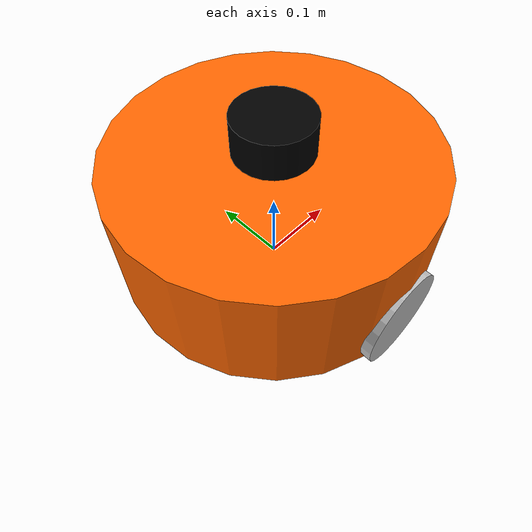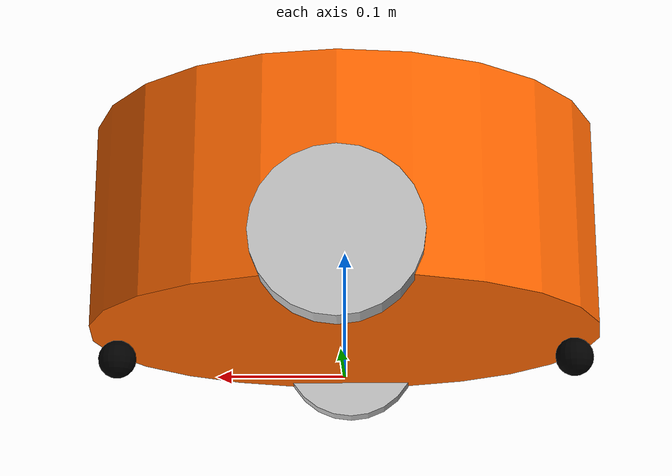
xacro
<?xml version="1.0"?>
<robot name="mbot" xmlns:xacro="http://www.ros.org/wiki/xacro">
    <xacro:include filename="$(find mbot_description)/urdf/xacro/gazebo/mbot_base_gazebo.xacro" />
    <xacro:include filename="$(find mbot_description)/urdf/xacro/sensors/lidar_gazebo.xacro" />
    <xacro:mbot_base_gazebo robot_name="robot2"/>
    <xacro:rplidar prefix="laser"/>

    <xacro:property name="lidar_offset_x" value="0" />
    <xacro:property name="lidar_offset_y" value="0" />
    <xacro:property name="lidar_offset_z" value="0.105" />

    <joint name="lidar_joint" type="fixed">
       <origin xyz="${lidar_offset_x} ${lidar_offset_y} ${lidar_offset_z}" rpy="0 0 0" />
       <parent link="base_link"/>
       <child link="laser_link"/>
   </joint>
</robot>

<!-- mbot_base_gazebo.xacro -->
<robot name="mbot" xmlns:xacro="http://www.ros.org/wiki/xacro">

    <xacro:property name="M_PI" value="3.1415926"/>
    <xacro:property name="base_mass"   value="20" />
    <xacro:property name="base_radius" value="0.20"/>
    <xacro:property name="base_length" value="0.16"/>

    <xacro:property name="wheel_mass"   value="2" />
    <xacro:property name="wheel_radius" value="0.06"/>
    <xacro:property name="wheel_length" value="0.025"/>
    <xacro:property name="wheel_joint_y" value="0.19"/>
    <xacro:property name="wheel_joint_z" value="0.05"/>

    <xacro:property name="caster_mass"    value="0.5" />
    <xacro:property name="caster_radius"  value="0.015"/> <!-- wheel_radius - ( base_length/2 - wheel_joint_z) -->
    <xacro:property name="caster_joint_x" value="0.18"/>

    <material name="yellow">
        <color rgba="1 0.4 0 1"/>
    </material>
    <material name="black">
        <color rgba="0 0 0 0.95"/>
    </material>
    <material name="gray">
        <color rgba="0.75 0.75 0.75 1"/>
    </material>

    <xacro:macro name="sphere_inertial_matrix" params="m r">
        <inertial>
            <mass value="${m}" />
            <inertia ixx="${2*m*r*r/5}" ixy="0" ixz="0"
                iyy="${2*m*r*r/5}" iyz="0"
                izz="${2*m*r*r/5}" />
        </inertial>
    </xacro:macro>

    <xacro:macro name="cylinder_inertial_matrix" params="m r h">
        <inertial>
            <mass value="${m}" />
            <inertia ixx="${m*(3*r*r+h*h)/12}" ixy = "0" ixz = "0"
                iyy="${m*(3*r*r+h*h)/12}" iyz = "0"
                izz="${m*r*r/2}" />
        </inertial>
    </xacro:macro>

    <xacro:macro name="wheel" params="prefix reflect">
        <joint name="${prefix}_wheel_joint" type="continuous">
            <origin xyz="0 ${reflect*wheel_joint_y} ${-wheel_joint_z}" rpy="0 0 0"/>
            <parent link="base_link"/>
            <child link="${prefix}_wheel_link"/>
            <axis xyz="0 1 0"/>
        </joint>

        <link name="${prefix}_wheel_link">
            <visual>
                <origin xyz="0 0 0" rpy="${M_PI/2} 0 0" />
                <geometry>
                    <cylinder radius="${wheel_radius}" length = "${wheel_length}"/>
                </geometry>
                <material name="gray" />
            </visual>
            <collision>
                <origin xyz="0 0 0" rpy="${M_PI/2} 0 0" />
                <geometry>
                    <cylinder radius="${wheel_radius}" length = "${wheel_length}"/>
                </geometry>
            </collision>
            <xacro:cylinder_inertial_matrix  m="${wheel_mass}" r="${wheel_radius}" h="${wheel_length}" />
        </link>

        <gazebo reference="${prefix}_wheel_link">
            <material>Gazebo/Gray</material>
        </gazebo>
    </xacro:macro>

    <xacro:macro name="caster" params="prefix reflect">
        <joint name="${prefix}_caster_joint" type="continuous">
            <origin xyz="${reflect*caster_joint_x} 0 ${-(base_length/2 + caster_radius)}" rpy="0 0 0"/>
            <parent link="base_link"/>
            <child link="${prefix}_caster_link"/>
            <axis xyz="0 1 0"/>
        </joint>

        <link name="${prefix}_caster_link">
            <visual>
                <origin xyz="0 0 0" rpy="0 0 0"/>
                <geometry>
                    <sphere radius="${caster_radius}" />
                </geometry>
                <material name="black" />
            </visual>
            <collision>
                <origin xyz="0 0 0" rpy="0 0 0"/>
                <geometry>
                    <sphere radius="${caster_radius}" />
                </geometry>
            </collision>
            <xacro:sphere_inertial_matrix  m="${caster_mass}" r="${caster_radius}" />
        </link>

        <gazebo reference="${prefix}_caster_link">
            <material>Gazebo/Black</material>
        </gazebo>
    </xacro:macro>

    <xacro:macro name="mbot_base_gazebo" params="robot_name">
        <link name="base_footprint">
            <visual>
                <origin xyz="0 0 0" rpy="0 0 0" />
                <geometry>
                    <box size="0.001 0.001 0.001" />
                </geometry>
            </visual>
        </link>
        <gazebo reference="base_footprint">
            <turnGravityOff>false</turnGravityOff>
        </gazebo>

        <joint name="base_footprint_joint" type="fixed">
            <origin xyz="0 0 ${base_length/2 + caster_radius*2}" rpy="0 0 0" />
            <parent link="base_footprint"/>
            <child link="base_link" />
        </joint>

        <link name="base_link">
            <visual>
                <origin xyz=" 0 0 0" rpy="0 0 0" />
                <geometry>
                    <cylinder length="${base_length}" radius="${base_radius}"/>
                </geometry>
                <material name="yellow" />
            </visual>
            <collision>
                <origin xyz=" 0 0 0" rpy="0 0 0" />
                <geometry>
                    <cylinder length="${base_length}" radius="${base_radius}"/>
                </geometry>
            </collision>
            <xacro:cylinder_inertial_matrix  m="${base_mass}" r="${base_radius}" h="${base_length}" />
        </link>

        <gazebo reference="base_link">
            <material>Gazebo/Blue</material>
        </gazebo>

        <xacro:wheel prefix="left"  reflect="1"/>
        <xacro:wheel prefix="right" reflect="-1"/>

        <xacro:caster prefix="front" reflect="-1"/>
        <xacro:caster prefix="back"  reflect="1"/>

        <gazebo>
            <plugin name="differential_drive_controller"
                    filename="libgazebo_ros_diff_drive.so">
                <rosDebugLevel>Debug</rosDebugLevel>
                <publishWheelTF>false</publishWheelTF>
                <robotNamespace>/</robotNamespace>
                <publishTf>1</publishTf>
                <publishWheelJointState>false</publishWheelJointState>
                <alwaysOn>true</alwaysOn>
                <updateRate>100.0</updateRate>
                <legacyMode>true</legacyMode>
                <leftJoint>left_wheel_joint</leftJoint>
                <rightJoint>right_wheel_joint</rightJoint>
                <wheelSeparation>${wheel_joint_y*2}</wheelSeparation>
                <wheelDiameter>${2*wheel_radius}</wheelDiameter>
                <broadcastTF>true</broadcastTF>
                <wheelTorque>30</wheelTorque>  <!-- 扭矩 -->
                <wheelAcceleration>1.8</wheelAcceleration> <!-- 加速度 -->
                <commandTopic>cmd_vel</commandTopic>
                <odometryFrame>${robot_name}/odom</odometryFrame>
                <odometryTopic>odom</odometryTopic>
                <robotBaseFrame>${robot_name}/base_footprint</robotBaseFrame>
            </plugin>
        </gazebo>
    </xacro:macro>
</robot>

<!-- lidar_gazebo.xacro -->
<robot xmlns:xacro="http://www.ros.org/wiki/xacro" name="laser">

    <xacro:macro name="rplidar" params="prefix:=laser">
        <!-- Create laser reference frame -->
        <link name="${prefix}_link">
            <inertial>
                <mass value="0.1" />
                <origin xyz="0 0 0" />
                <inertia ixx="0.01" ixy="0.0" ixz="0.0"
                         iyy="0.01" iyz="0.0"
                         izz="0.01" />
            </inertial>

            <visual>
                <origin xyz=" 0 0 0 " rpy="0 0 0" />
                <geometry>
                    <cylinder length="0.05" radius="0.05"/>
                </geometry>
                <material name="black"/>
            </visual>

            <collision>
                <origin xyz="0.0 0.0 0.0" rpy="0 0 0" />
                <geometry>
                    <cylinder length="0.06" radius="0.05"/>
                </geometry>
            </collision>
        </link>

        <gazebo reference="${prefix}_link">
            <material>Gazebo/Black</material>
        </gazebo>

        <gazebo reference="${prefix}_link">
            <sensor type="ray" name="rplidar">
                <pose>0 0 0 0 0 0</pose>
                <visualize>true</visualize>
                <update_rate>10</update_rate>
                <ray>
                    <scan>
                      <horizontal>
                        <samples>720</samples>
                        <resolution>1</resolution>
                        <min_angle>-3.14</min_angle>
                        <max_angle>3.14</max_angle>
                      </horizontal>
                    </scan>
                    <range>
                      <min>0.10</min>
                      <max>20.0</max>
                      <resolution>0.01</resolution>
                    </range>
                    <noise>
                      <type>gaussian</type>
                      <mean>0.0</mean>
                      <stddev>0.01</stddev>
                    </noise>
                </ray>
                <plugin name="gazebo_rplidar" filename="libgazebo_ros_laser.so">
                    <topicName>scan</topicName>
                    <frameName>laser_link</frameName>
                </plugin>
            </sensor>
        </gazebo>

    </xacro:macro>
</robot>
